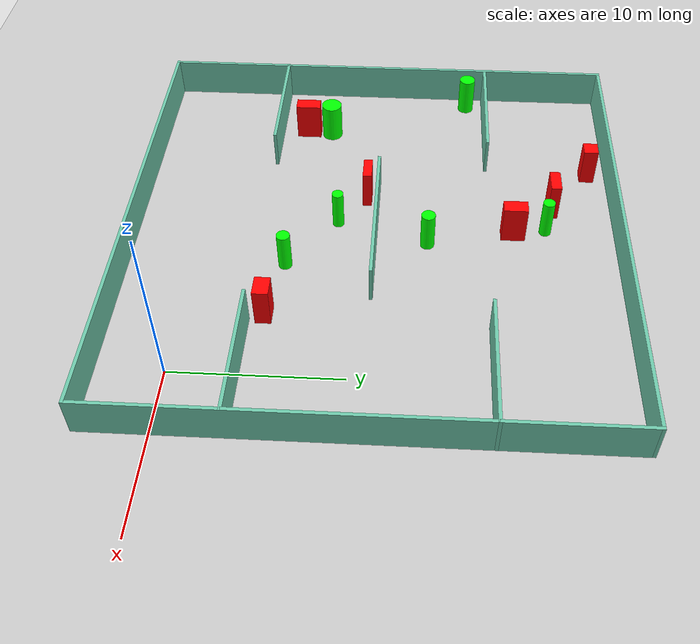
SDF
<sdf version="1.7">
 <world name="default">
  <light name="sun" type="directional">
   <pose>0 0 10 0 -0 0</pose>
   <diffuse>0.8 0.8 0.8 1</diffuse>
   <specular>0.2 0.2 0.2 1</specular>
   <attenuation>
    <range>1000</range>
    <constant>0.9</constant>
    <linear>0.01</linear>
    <quadratic>0.001</quadratic>
   </attenuation>
   <direction>-0.5 0.1 -0.9</direction>
   <spot><inner_angle>0</inner_angle><outer_angle>0</outer_angle><falloff>0</falloff></spot>
  </light>
  <model name="ground_plane">
   <static>1</static>
   <link name="link">
    <collision name="collision">
     <geometry><plane><normal>0 0 1</normal><size>100 100</size></plane></geometry>
     <surface>
      <contact><collide_bitmask>65535</collide_bitmask></contact>
      <friction><ode><mu>100</mu><mu2>50</mu2></ode></friction>
     </surface>
    </collision>
    <visual name="visual">
     <cast_shadows>0</cast_shadows>
     <geometry><plane><normal>0 0 1</normal><size>100 100</size></plane></geometry>
     <material>
      <script><uri>file://media/materials/scripts/gazebo.material</uri><name>Gazebo/Grey</name></script>
     </material>
    </visual>
   </link>
  </model>
  <gravity>0 0 -9.8</gravity>
  <magnetic_field>6e-06 2.3e-05 -4.2e-05</magnetic_field>
  <atmosphere type="adiabatic"/>
  <physics type="ode">
   <max_step_size>0.001</max_step_size>
   <real_time_factor>1</real_time_factor>
   <real_time_update_rate>1000</real_time_update_rate>
  </physics>
  <scene><ambient>0.4 0.4 0.4 1</ambient><background>0.7 0.7 0.7 1</background><shadows>1</shadows></scene>
  <spherical_coordinates>
   <surface_model>EARTH_WGS84</surface_model>
   <latitude_deg>0</latitude_deg>
   <longitude_deg>0</longitude_deg>
   <elevation>0</elevation>
   <heading_deg>0</heading_deg>
  </spherical_coordinates>
  <model name="my_base_walls">
   <link name="Wall_10">
    <collision name="Wall_10_Collision">
     <geometry><box><size>8.2 0.2 2.5</size></box></geometry>
     <pose>0 0 1.25 0 -0 0</pose>
    </collision>
    <visual name="Wall_10_Visual">
     <pose>0 0 1.25 0 -0 0</pose>
     <geometry><box><size>8.2 0.2 2.5</size></box></geometry>
     <material>
      <script><uri>file://media/materials/scripts/gazebo.material</uri><name>Gazebo/Grey</name></script>
      <ambient>0.435294 0.796078 0.67451 1</ambient>
     </material>
     <meta><layer>0</layer></meta>
    </visual>
    <pose>-11 -7 0 0 -0 0</pose>
   </link>
   <link name="Wall_12">
    <collision name="Wall_12_Collision">
     <geometry><box><size>8.2 0.2 2.5</size></box></geometry>
     <pose>0 0 1.25 0 -0 0</pose>
    </collision>
    <visual name="Wall_12_Visual">
     <pose>0 0 1.25 0 -0 0</pose>
     <geometry><box><size>8.2 0.2 2.5</size></box></geometry>
     <material>
      <script><uri>file://media/materials/scripts/gazebo.material</uri><name>Gazebo/Grey</name></script>
      <ambient>0.435294 0.796078 0.67451 1</ambient>
     </material>
     <meta><layer>0</layer></meta>
    </visual>
    <pose>-11 7 0 0 -0 0</pose>
   </link>
   <link name="Wall_14">
    <collision name="Wall_14_Collision">
     <geometry><box><size>8.2 0.2 2.5</size></box></geometry>
     <pose>0 0 1.25 0 -0 0</pose>
    </collision>
    <visual name="Wall_14_Visual">
     <pose>0 0 1.25 0 -0 0</pose>
     <geometry><box><size>8.2 0.2 2.5</size></box></geometry>
     <material>
      <script><uri>file://media/materials/scripts/gazebo.material</uri><name>Gazebo/Grey</name></script>
      <ambient>0.435294 0.796078 0.67451 1</ambient>
     </material>
     <meta><layer>0</layer></meta>
    </visual>
    <pose>11 7 0 0 -0 3.14159</pose>
   </link>
   <link name="Wall_16">
    <collision name="Wall_16_Collision">
     <geometry><box><size>10.2 0.2 2.5</size></box></geometry>
     <pose>0 0 1.25 0 -0 0</pose>
    </collision>
    <visual name="Wall_16_Visual">
     <pose>0 0 1.25 0 -0 0</pose>
     <geometry><box><size>10.2 0.2 2.5</size></box></geometry>
     <material>
      <script><uri>file://media/materials/scripts/gazebo.material</uri><name>Gazebo/Grey</name></script>
      <ambient>0.435294 0.796078 0.67451 1</ambient>
     </material>
     <meta><layer>0</layer></meta>
    </visual>
    <pose>0 0 0 0 -0 3.14159</pose>
   </link>
   <link name="Wall_2">
    <collision name="Wall_2_Collision">
     <geometry><box><size>30.2 0.2 2.5</size></box></geometry>
     <pose>0 0 1.25 0 -0 0</pose>
    </collision>
    <visual name="Wall_2_Visual">
     <pose>0 0 1.25 0 -0 0</pose>
     <geometry><box><size>30.2 0.2 2.5</size></box></geometry>
     <material>
      <script><uri>file://media/materials/scripts/gazebo.material</uri><name>Gazebo/Grey</name></script>
      <ambient>0.435294 0.796078 0.67451 1</ambient>
     </material>
     <meta><layer>0</layer></meta>
    </visual>
    <pose>0 -15 0 0 -0 3.14159</pose>
   </link>
   <link name="Wall_3">
    <collision name="Wall_3_Collision">
     <geometry><box><size>30.2 0.2 2.5</size></box></geometry>
     <pose>0 0 1.25 0 -0 0</pose>
    </collision>
    <visual name="Wall_3_Visual">
     <pose>0 0 1.25 0 -0 0</pose>
     <geometry><box><size>30.2 0.2 2.5</size></box></geometry>
     <material>
      <script><uri>file://media/materials/scripts/gazebo.material</uri><name>Gazebo/Grey</name></script>
      <ambient>0.435294 0.796078 0.67451 1</ambient>
     </material>
     <meta><layer>0</layer></meta>
    </visual>
    <pose>-15 0 0 0 -0 1.5708</pose>
   </link>
   <link name="Wall_4">
    <collision name="Wall_4_Collision">
     <geometry><box><size>30.2 0.2 2.5</size></box></geometry>
     <pose>0 0 1.25 0 -0 0</pose>
    </collision>
    <visual name="Wall_4_Visual">
     <pose>0 0 1.25 0 -0 0</pose>
     <geometry><box><size>30.2 0.2 2.5</size></box></geometry>
     <material>
      <script><uri>file://media/materials/scripts/gazebo.material</uri><name>Gazebo/Grey</name></script>
      <ambient>0.435294 0.796078 0.67451 1</ambient>
     </material>
     <meta><layer>0</layer></meta>
    </visual>
    <pose>0 15 0 0 -0 0</pose>
   </link>
   <link name="Wall_6">
    <collision name="Wall_6_Collision">
     <geometry><box><size>30.2 0.2 2.5</size></box></geometry>
     <pose>0 0 1.25 0 -0 0</pose>
    </collision>
    <visual name="Wall_6_Visual">
     <pose>0 0 1.25 0 -0 0</pose>
     <geometry><box><size>30.2 0.2 2.5</size></box></geometry>
     <material>
      <script><uri>file://media/materials/scripts/gazebo.material</uri><name>Gazebo/Grey</name></script>
      <ambient>0.435294 0.796078 0.67451 1</ambient>
     </material>
     <meta><layer>0</layer></meta>
    </visual>
    <pose>15 0 0 0 -0 1.5708</pose>
   </link>
   <link name="Wall_8">
    <collision name="Wall_8_Collision">
     <geometry><box><size>8.2 0.2 2.5</size></box></geometry>
     <pose>0 0 1.25 0 -0 0</pose>
    </collision>
    <visual name="Wall_8_Visual">
     <pose>0 0 1.25 0 -0 0</pose>
     <geometry><box><size>8.2 0.2 2.5</size></box></geometry>
     <material>
      <script><uri>file://media/materials/scripts/gazebo.material</uri><name>Gazebo/Grey</name></script>
      <ambient>0.435294 0.796078 0.67451 1</ambient>
     </material>
     <meta><layer>0</layer></meta>
    </visual>
    <pose>11 -7 0 0 -0 3.14159</pose>
   </link>
   <static>1</static>
   <pose>-11 11 0 0 -0 0</pose>
  </model>
  <model name="cylinder1">
   <static>1</static>
   <link name="link">
    <inertial>
     <mass>1</mass>
     <inertia><ixx>0.5</ixx><ixy>0</ixy><ixz>0</ixz><iyy>0.5</iyy><iyz>0</iyz><izz>1</izz></inertia>
    </inertial>
    <collision name="collision">
     <geometry><cylinder><radius>0.3735028188911641</radius><length>2.5</length></cylinder></geometry>
    </collision>
    <visual name="visual">
     <geometry><cylinder><radius>0.3735028188911641</radius><length>2.5</length></cylinder></geometry>
     <material>
      <ambient>0 1 0 1</ambient>
      <diffuse>0 1 0 1</diffuse>
      <specular>0.1 0.1 0.1 1</specular>
      <emissive>0 0 0 0</emissive>
     </material>
    </visual>
   </link>
   <pose>-12.191635590868378 21.606390426335302 1.25 0 0 0</pose>
  </model>
  <model name="cylinder2">
   <static>1</static>
   <link name="link">
    <inertial>
     <mass>1</mass>
     <inertia><ixx>0.5</ixx><ixy>0</ixy><ixz>0</ixz><iyy>0.5</iyy><iyz>0</iyz><izz>1</izz></inertia>
    </inertial>
    <collision name="collision">
     <geometry><cylinder><radius>0.4341776892056892</radius><length>2.5</length></cylinder></geometry>
    </collision>
    <visual name="visual">
     <geometry><cylinder><radius>0.4341776892056892</radius><length>2.5</length></cylinder></geometry>
     <material>
      <ambient>0 1 0 1</ambient>
      <diffuse>0 1 0 1</diffuse>
      <specular>0.1 0.1 0.1 1</specular>
      <emissive>0 0 0 0</emissive>
     </material>
    </visual>
   </link>
   <pose>-10.69977752387662 14.238232077612423 1.25 0 0 0</pose>
  </model>
  <model name="cylinder3">
   <static>1</static>
   <link name="link">
    <inertial>
     <mass>1</mass>
     <inertia><ixx>0.5</ixx><ixy>0</ixy><ixz>0</ixz><iyy>0.5</iyy><iyz>0</iyz><izz>1</izz></inertia>
    </inertial>
    <collision name="collision">
     <geometry><cylinder><radius>0.6637495704068688</radius><length>2.5</length></cylinder></geometry>
    </collision>
    <visual name="visual">
     <geometry><cylinder><radius>0.6637495704068688</radius><length>2.5</length></cylinder></geometry>
     <material>
      <ambient>0 1 0 1</ambient>
      <diffuse>0 1 0 1</diffuse>
      <specular>0.1 0.1 0.1 1</specular>
      <emissive>0 0 0 0</emissive>
     </material>
    </visual>
   </link>
   <pose>-21.39585566156321 7.47020841041749 1.25 0 0 0</pose>
  </model>
  <model name="cylinder4">
   <static>1</static>
   <link name="link">
    <inertial>
     <mass>1</mass>
     <inertia><ixx>0.5</ixx><ixy>0</ixy><ixz>0</ixz><iyy>0.5</iyy><iyz>0</iyz><izz>1</izz></inertia>
    </inertial>
    <collision name="collision">
     <geometry><cylinder><radius>0.5201382843313949</radius><length>2.5</length></cylinder></geometry>
    </collision>
    <visual name="visual">
     <geometry><cylinder><radius>0.5201382843313949</radius><length>2.5</length></cylinder></geometry>
     <material>
      <ambient>0 1 0 1</ambient>
      <diffuse>0 1 0 1</diffuse>
      <specular>0.1 0.1 0.1 1</specular>
      <emissive>0 0 0 0</emissive>
     </material>
    </visual>
   </link>
   <pose>-24.846284014256767 16.779174889900027 1.25 0 0 0</pose>
  </model>
  <model name="cylinder5">
   <static>1</static>
   <link name="link">
    <inertial>
     <mass>1</mass>
     <inertia><ixx>0.5</ixx><ixy>0</ixy><ixz>0</ixz><iyy>0.5</iyy><iyz>0</iyz><izz>1</izz></inertia>
    </inertial>
    <collision name="collision">
     <geometry><cylinder><radius>0.4121379194810889</radius><length>2.5</length></cylinder></geometry>
    </collision>
    <visual name="visual">
     <geometry><cylinder><radius>0.4121379194810889</radius><length>2.5</length></cylinder></geometry>
     <material>
      <ambient>0 1 0 1</ambient>
      <diffuse>0 1 0 1</diffuse>
      <specular>0.1 0.1 0.1 1</specular>
      <emissive>0 0 0 0</emissive>
     </material>
    </visual>
   </link>
   <pose>-8.498894913829453 5.6641633612143 1.25 0 0 0</pose>
  </model>
  <model name="cylinder6">
   <static>1</static>
   <link name="link">
    <inertial>
     <mass>1</mass>
     <inertia><ixx>0.5</ixx><ixy>0</ixy><ixz>0</ixz><iyy>0.5</iyy><iyz>0</iyz><izz>1</izz></inertia>
    </inertial>
    <collision name="collision">
     <geometry><cylinder><radius>0.3560435429685688</radius><length>2.5</length></cylinder></geometry>
    </collision>
    <visual name="visual">
     <geometry><cylinder><radius>0.3560435429685688</radius><length>2.5</length></cylinder></geometry>
     <material>
      <ambient>0 1 0 1</ambient>
      <diffuse>0 1 0 1</diffuse>
      <specular>0.1 0.1 0.1 1</specular>
      <emissive>0 0 0 0</emissive>
     </material>
    </visual>
   </link>
   <pose>-12.329576247189296 8.59906528433159 1.25 0 0 0</pose>
  </model>
  <model name="box1">
   <static>1</static>
   <link name="link">
    <inertial>
     <mass>1</mass>
     <inertia><ixx>0.083</ixx><ixy>0</ixy><ixz>0</ixz><iyy>0.083</iyy><iyz>0</iyz><izz>0.083</izz></inertia>
    </inertial>
    <collision name="collision">
     <geometry><box><size>0.887975744852772 1.6045027352525338 2.5</size></box></geometry>
    </collision>
    <visual name="visual">
     <geometry><box><size>0.887975744852772 1.6045027352525338 2.5</size></box></geometry>
     <material>
      <ambient>1 0 0 1</ambient>
      <diffuse>1 0 0 1</diffuse>
      <specular>0.1 0.1 0.1 1</specular>
      <emissive>0 0 0 0</emissive>
     </material>
    </visual>
    <sensor name="my_contact" type="contact">
     <contact><collision>box_collision</collision><topic>__default_topic__</topic></contact>
    </sensor>
   </link>
   <pose>-21.455322048817983 5.884379100926033 1.25 0 0 0</pose>
  </model>
  <model name="box2">
   <static>1</static>
   <link name="link">
    <inertial>
     <mass>1</mass>
     <inertia><ixx>0.083</ixx><ixy>0</ixy><ixz>0</ixz><iyy>0.083</iyy><iyz>0</iyz><izz>0.083</izz></inertia>
    </inertial>
    <collision name="collision">
     <geometry><box><size>1.6108923862502602 0.5638081942604427 2.5</size></box></geometry>
    </collision>
    <visual name="visual">
     <geometry><box><size>1.6108923862502602 0.5638081942604427 2.5</size></box></geometry>
     <material>
      <ambient>1 0 0 1</ambient>
      <diffuse>1 0 0 1</diffuse>
      <specular>0.1 0.1 0.1 1</specular>
      <emissive>0 0 0 0</emissive>
     </material>
    </visual>
    <sensor name="my_contact" type="contact">
     <contact><collision>box_collision</collision><topic>__default_topic__</topic></contact>
    </sensor>
   </link>
   <pose>-14.903190346273407 10.318862135952477 1.25 0 0 0</pose>
  </model>
  <model name="box3">
   <static>1</static>
   <link name="link">
    <inertial>
     <mass>1</mass>
     <inertia><ixx>0.083</ixx><ixy>0</ixy><ixz>0</ixz><iyy>0.083</iyy><iyz>0</iyz><izz>0.083</izz></inertia>
    </inertial>
    <collision name="collision">
     <geometry><box><size>1.5763180830638748 0.6571259591892259 2.5</size></box></geometry>
    </collision>
    <visual name="visual">
     <geometry><box><size>1.5763180830638748 0.6571259591892259 2.5</size></box></geometry>
     <material>
      <ambient>1 0 0 1</ambient>
      <diffuse>1 0 0 1</diffuse>
      <specular>0.1 0.1 0.1 1</specular>
      <emissive>0 0 0 0</emissive>
     </material>
    </visual>
    <sensor name="my_contact" type="contact">
     <contact><collision>box_collision</collision><topic>__default_topic__</topic></contact>
    </sensor>
   </link>
   <pose>-14.313326750383334 22.164332866332693 1.25 0 0 0</pose>
  </model>
  <model name="box4">
   <static>1</static>
   <link name="link">
    <inertial>
     <mass>1</mass>
     <inertia><ixx>0.083</ixx><ixy>0</ixy><ixz>0</ixz><iyy>0.083</iyy><iyz>0</iyz><izz>0.083</izz></inertia>
    </inertial>
    <collision name="collision">
     <geometry><box><size>0.9565858598544077 0.9256386747366142 2.5</size></box></geometry>
    </collision>
    <visual name="visual">
     <geometry><box><size>0.9565858598544077 0.9256386747366142 2.5</size></box></geometry>
     <material>
      <ambient>1 0 0 1</ambient>
      <diffuse>1 0 0 1</diffuse>
      <specular>0.1 0.1 0.1 1</specular>
      <emissive>0 0 0 0</emissive>
     </material>
    </visual>
    <sensor name="my_contact" type="contact">
     <contact><collision>box_collision</collision><topic>__default_topic__</topic></contact>
    </sensor>
   </link>
   <pose>-17.62061161792233 24.679332569212217 1.25 0 0 0</pose>
  </model>
  <model name="box5">
   <static>1</static>
   <link name="link">
    <inertial>
     <mass>1</mass>
     <inertia><ixx>0.083</ixx><ixy>0</ixy><ixz>0</ixz><iyy>0.083</iyy><iyz>0</iyz><izz>0.083</izz></inertia>
    </inertial>
    <collision name="collision">
     <geometry><box><size>0.8913227339701084 1.4918769655665616 2.5</size></box></geometry>
    </collision>
    <visual name="visual">
     <geometry><box><size>0.8913227339701084 1.4918769655665616 2.5</size></box></geometry>
     <material>
      <ambient>1 0 0 1</ambient>
      <diffuse>1 0 0 1</diffuse>
      <specular>0.1 0.1 0.1 1</specular>
      <emissive>0 0 0 0</emissive>
     </material>
    </visual>
    <sensor name="my_contact" type="contact">
     <contact><collision>box_collision</collision><topic>__default_topic__</topic></contact>
    </sensor>
   </link>
   <pose>-11.775343576180141 19.556411575853662 1.25 0 0 0</pose>
  </model>
  <model name="box6">
   <static>1</static>
   <link name="link">
    <inertial>
     <mass>1</mass>
     <inertia><ixx>0.083</ixx><ixy>0</ixy><ixz>0</ixz><iyy>0.083</iyy><iyz>0</iyz><izz>0.083</izz></inertia>
    </inertial>
    <collision name="collision">
     <geometry><box><size>1.292383655455498 0.9392969397366192 2.5</size></box></geometry>
    </collision>
    <visual name="visual">
     <geometry><box><size>1.292383655455498 0.9392969397366192 2.5</size></box></geometry>
     <material>
      <ambient>1 0 0 1</ambient>
      <diffuse>1 0 0 1</diffuse>
      <specular>0.1 0.1 0.1 1</specular>
      <emissive>0 0 0 0</emissive>
     </material>
    </visual>
    <sensor name="my_contact" type="contact">
     <contact><collision>box_collision</collision><topic>__default_topic__</topic></contact>
    </sensor>
   </link>
   <pose>-4.415357568051874 4.925898946999573 1.25 0 0 0</pose>
  </model>
 </world>
</sdf>
